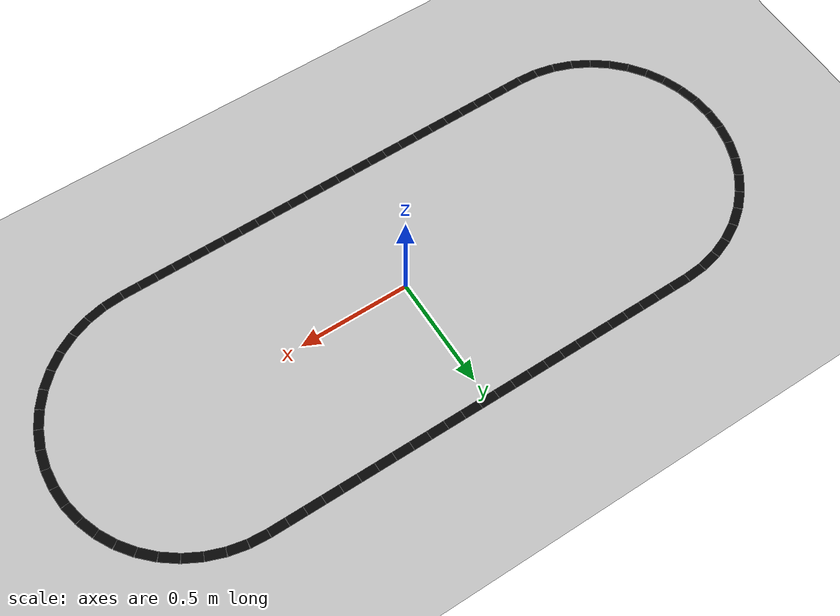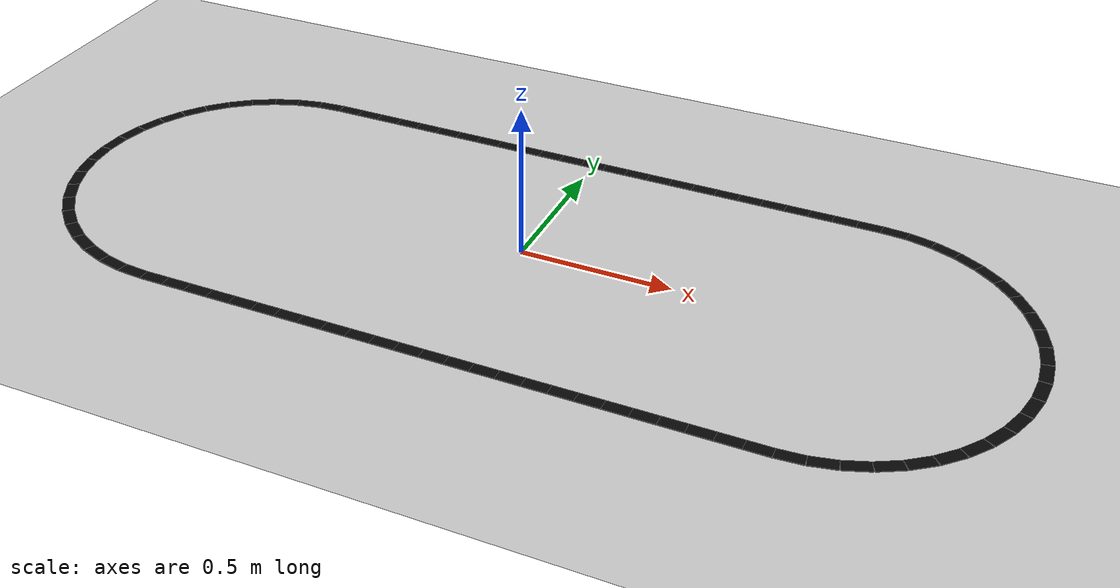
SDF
<sdf version="1.9">
 <world name="line_follower_world">
  <model name="ground_plane">
   <static>true</static>
   <link name="link">
    <collision name="collision">
     <geometry><plane><normal>0 0 1</normal><size>8 6</size></plane></geometry>
    </collision>
    <visual name="visual">
     <geometry><plane><normal>0 0 1</normal><size>8 6</size></plane></geometry>
     <material>
      <ambient>0.75 0.75 0.75 1</ambient>
      <diffuse>0.75 0.75 0.75 1</diffuse>
      <specular>0.1 0.1 0.1 1</specular>
     </material>
    </visual>
   </link>
  </model>
  <model name="line_track">
   <static>true</static>
   <link name="track_link">
    <visual name="line_segment_0">
     <pose>-0.9600 0.6000 0.001 0 0 0.0000</pose>
     <geometry><box><size>0.0800 0.04 0.002</size></box></geometry>
     <material>
      <ambient>0.02 0.02 0.02 1</ambient>
      <diffuse>0.02 0.02 0.02 1</diffuse>
      <specular>0.05 0.05 0.05 1</specular>
     </material>
    </visual>
    <visual name="line_segment_1">
     <pose>-0.8800 0.6000 0.001 0 0 0.0000</pose>
     <geometry><box><size>0.0800 0.04 0.002</size></box></geometry>
     <material>
      <ambient>0.02 0.02 0.02 1</ambient>
      <diffuse>0.02 0.02 0.02 1</diffuse>
      <specular>0.05 0.05 0.05 1</specular>
     </material>
    </visual>
    <visual name="line_segment_2">
     <pose>-0.8000 0.6000 0.001 0 0 0.0000</pose>
     <geometry><box><size>0.0800 0.04 0.002</size></box></geometry>
     <material>
      <ambient>0.02 0.02 0.02 1</ambient>
      <diffuse>0.02 0.02 0.02 1</diffuse>
      <specular>0.05 0.05 0.05 1</specular>
     </material>
    </visual>
    <visual name="line_segment_3">
     <pose>-0.7200 0.6000 0.001 0 0 0.0000</pose>
     <geometry><box><size>0.0800 0.04 0.002</size></box></geometry>
     <material>
      <ambient>0.02 0.02 0.02 1</ambient>
      <diffuse>0.02 0.02 0.02 1</diffuse>
      <specular>0.05 0.05 0.05 1</specular>
     </material>
    </visual>
    <visual name="line_segment_4">
     <pose>-0.6400 0.6000 0.001 0 0 0.0000</pose>
     <geometry><box><size>0.0800 0.04 0.002</size></box></geometry>
     <material>
      <ambient>0.02 0.02 0.02 1</ambient>
      <diffuse>0.02 0.02 0.02 1</diffuse>
      <specular>0.05 0.05 0.05 1</specular>
     </material>
    </visual>
    <visual name="line_segment_5">
     <pose>-0.5600 0.6000 0.001 0 0 0.0000</pose>
     <geometry><box><size>0.0800 0.04 0.002</size></box></geometry>
     <material>
      <ambient>0.02 0.02 0.02 1</ambient>
      <diffuse>0.02 0.02 0.02 1</diffuse>
      <specular>0.05 0.05 0.05 1</specular>
     </material>
    </visual>
    <visual name="line_segment_6">
     <pose>-0.4800 0.6000 0.001 0 0 0.0000</pose>
     <geometry><box><size>0.0800 0.04 0.002</size></box></geometry>
     <material>
      <ambient>0.02 0.02 0.02 1</ambient>
      <diffuse>0.02 0.02 0.02 1</diffuse>
      <specular>0.05 0.05 0.05 1</specular>
     </material>
    </visual>
    <visual name="line_segment_7">
     <pose>-0.4000 0.6000 0.001 0 0 0.0000</pose>
     <geometry><box><size>0.0800 0.04 0.002</size></box></geometry>
     <material>
      <ambient>0.02 0.02 0.02 1</ambient>
      <diffuse>0.02 0.02 0.02 1</diffuse>
      <specular>0.05 0.05 0.05 1</specular>
     </material>
    </visual>
    <visual name="line_segment_8">
     <pose>-0.3200 0.6000 0.001 0 0 0.0000</pose>
     <geometry><box><size>0.0800 0.04 0.002</size></box></geometry>
     <material>
      <ambient>0.02 0.02 0.02 1</ambient>
      <diffuse>0.02 0.02 0.02 1</diffuse>
      <specular>0.05 0.05 0.05 1</specular>
     </material>
    </visual>
    <visual name="line_segment_9">
     <pose>-0.2400 0.6000 0.001 0 0 0.0000</pose>
     <geometry><box><size>0.0800 0.04 0.002</size></box></geometry>
     <material>
      <ambient>0.02 0.02 0.02 1</ambient>
      <diffuse>0.02 0.02 0.02 1</diffuse>
      <specular>0.05 0.05 0.05 1</specular>
     </material>
    </visual>
    <visual name="line_segment_10">
     <pose>-0.1600 0.6000 0.001 0 0 0.0000</pose>
     <geometry><box><size>0.0800 0.04 0.002</size></box></geometry>
     <material>
      <ambient>0.02 0.02 0.02 1</ambient>
      <diffuse>0.02 0.02 0.02 1</diffuse>
      <specular>0.05 0.05 0.05 1</specular>
     </material>
    </visual>
    <visual name="line_segment_11">
     <pose>-0.0800 0.6000 0.001 0 0 0.0000</pose>
     <geometry><box><size>0.0800 0.04 0.002</size></box></geometry>
     <material>
      <ambient>0.02 0.02 0.02 1</ambient>
      <diffuse>0.02 0.02 0.02 1</diffuse>
      <specular>0.05 0.05 0.05 1</specular>
     </material>
    </visual>
    <visual name="line_segment_12">
     <pose>0.0000 0.6000 0.001 0 0 0.0000</pose>
     <geometry><box><size>0.0800 0.04 0.002</size></box></geometry>
     <material>
      <ambient>0.02 0.02 0.02 1</ambient>
      <diffuse>0.02 0.02 0.02 1</diffuse>
      <specular>0.05 0.05 0.05 1</specular>
     </material>
    </visual>
    <visual name="line_segment_13">
     <pose>0.0800 0.6000 0.001 0 0 0.0000</pose>
     <geometry><box><size>0.0800 0.04 0.002</size></box></geometry>
     <material>
      <ambient>0.02 0.02 0.02 1</ambient>
      <diffuse>0.02 0.02 0.02 1</diffuse>
      <specular>0.05 0.05 0.05 1</specular>
     </material>
    </visual>
    <visual name="line_segment_14">
     <pose>0.1600 0.6000 0.001 0 0 0.0000</pose>
     <geometry><box><size>0.0800 0.04 0.002</size></box></geometry>
     <material>
      <ambient>0.02 0.02 0.02 1</ambient>
      <diffuse>0.02 0.02 0.02 1</diffuse>
      <specular>0.05 0.05 0.05 1</specular>
     </material>
    </visual>
    <visual name="line_segment_15">
     <pose>0.2400 0.6000 0.001 0 0 0.0000</pose>
     <geometry><box><size>0.0800 0.04 0.002</size></box></geometry>
     <material>
      <ambient>0.02 0.02 0.02 1</ambient>
      <diffuse>0.02 0.02 0.02 1</diffuse>
      <specular>0.05 0.05 0.05 1</specular>
     </material>
    </visual>
    <visual name="line_segment_16">
     <pose>0.3200 0.6000 0.001 0 0 0.0000</pose>
     <geometry><box><size>0.0800 0.04 0.002</size></box></geometry>
     <material>
      <ambient>0.02 0.02 0.02 1</ambient>
      <diffuse>0.02 0.02 0.02 1</diffuse>
      <specular>0.05 0.05 0.05 1</specular>
     </material>
    </visual>
    <visual name="line_segment_17">
     <pose>0.4000 0.6000 0.001 0 0 0.0000</pose>
     <geometry><box><size>0.0800 0.04 0.002</size></box></geometry>
     <material>
      <ambient>0.02 0.02 0.02 1</ambient>
      <diffuse>0.02 0.02 0.02 1</diffuse>
      <specular>0.05 0.05 0.05 1</specular>
     </material>
    </visual>
    <visual name="line_segment_18">
     <pose>0.4800 0.6000 0.001 0 0 0.0000</pose>
     <geometry><box><size>0.0800 0.04 0.002</size></box></geometry>
     <material>
      <ambient>0.02 0.02 0.02 1</ambient>
      <diffuse>0.02 0.02 0.02 1</diffuse>
      <specular>0.05 0.05 0.05 1</specular>
     </material>
    </visual>
    <visual name="line_segment_19">
     <pose>0.5600 0.6000 0.001 0 0 0.0000</pose>
     <geometry><box><size>0.0800 0.04 0.002</size></box></geometry>
     <material>
      <ambient>0.02 0.02 0.02 1</ambient>
      <diffuse>0.02 0.02 0.02 1</diffuse>
      <specular>0.05 0.05 0.05 1</specular>
     </material>
    </visual>
    <visual name="line_segment_20">
     <pose>0.6400 0.6000 0.001 0 0 0.0000</pose>
     <geometry><box><size>0.0800 0.04 0.002</size></box></geometry>
     <material>
      <ambient>0.02 0.02 0.02 1</ambient>
      <diffuse>0.02 0.02 0.02 1</diffuse>
      <specular>0.05 0.05 0.05 1</specular>
     </material>
    </visual>
    <visual name="line_segment_21">
     <pose>0.7200 0.6000 0.001 0 0 0.0000</pose>
     <geometry><box><size>0.0800 0.04 0.002</size></box></geometry>
     <material>
      <ambient>0.02 0.02 0.02 1</ambient>
      <diffuse>0.02 0.02 0.02 1</diffuse>
      <specular>0.05 0.05 0.05 1</specular>
     </material>
    </visual>
    <visual name="line_segment_22">
     <pose>0.8000 0.6000 0.001 0 0 0.0000</pose>
     <geometry><box><size>0.0800 0.04 0.002</size></box></geometry>
     <material>
      <ambient>0.02 0.02 0.02 1</ambient>
      <diffuse>0.02 0.02 0.02 1</diffuse>
      <specular>0.05 0.05 0.05 1</specular>
     </material>
    </visual>
    <visual name="line_segment_23">
     <pose>0.8800 0.6000 0.001 0 0 0.0000</pose>
     <geometry><box><size>0.0800 0.04 0.002</size></box></geometry>
     <material>
      <ambient>0.02 0.02 0.02 1</ambient>
      <diffuse>0.02 0.02 0.02 1</diffuse>
      <specular>0.05 0.05 0.05 1</specular>
     </material>
    </visual>
    <visual name="line_segment_24">
     <pose>0.9600 0.6000 0.001 0 0 0.0000</pose>
     <geometry><box><size>0.0800 0.04 0.002</size></box></geometry>
     <material>
      <ambient>0.02 0.02 0.02 1</ambient>
      <diffuse>0.02 0.02 0.02 1</diffuse>
      <specular>0.05 0.05 0.05 1</specular>
     </material>
    </visual>
    <visual name="line_segment_25">
     <pose>1.0427 0.5969 0.001 0 0 -0.0714</pose>
     <geometry><box><size>0.0856 0.04 0.002</size></box></geometry>
     <material>
      <ambient>0.02 0.02 0.02 1</ambient>
      <diffuse>0.02 0.02 0.02 1</diffuse>
      <specular>0.05 0.05 0.05 1</specular>
     </material>
    </visual>
    <visual name="line_segment_26">
     <pose>1.1272 0.5848 0.001 0 0 -0.2142</pose>
     <geometry><box><size>0.0856 0.04 0.002</size></box></geometry>
     <material>
      <ambient>0.02 0.02 0.02 1</ambient>
      <diffuse>0.02 0.02 0.02 1</diffuse>
      <specular>0.05 0.05 0.05 1</specular>
     </material>
    </visual>
    <visual name="line_segment_27">
     <pose>1.2091 0.5607 0.001 0 0 -0.3570</pose>
     <geometry><box><size>0.0856 0.04 0.002</size></box></geometry>
     <material>
      <ambient>0.02 0.02 0.02 1</ambient>
      <diffuse>0.02 0.02 0.02 1</diffuse>
      <specular>0.05 0.05 0.05 1</specular>
     </material>
    </visual>
    <visual name="line_segment_28">
     <pose>1.2868 0.5253 0.001 0 0 -0.4998</pose>
     <geometry><box><size>0.0856 0.04 0.002</size></box></geometry>
     <material>
      <ambient>0.02 0.02 0.02 1</ambient>
      <diffuse>0.02 0.02 0.02 1</diffuse>
      <specular>0.05 0.05 0.05 1</specular>
     </material>
    </visual>
    <visual name="line_segment_29">
     <pose>1.3587 0.4791 0.001 0 0 -0.6426</pose>
     <geometry><box><size>0.0856 0.04 0.002</size></box></geometry>
     <material>
      <ambient>0.02 0.02 0.02 1</ambient>
      <diffuse>0.02 0.02 0.02 1</diffuse>
      <specular>0.05 0.05 0.05 1</specular>
     </material>
    </visual>
    <visual name="line_segment_30">
     <pose>1.4232 0.4232 0.001 0 0 -0.7854</pose>
     <geometry><box><size>0.0856 0.04 0.002</size></box></geometry>
     <material>
      <ambient>0.02 0.02 0.02 1</ambient>
      <diffuse>0.02 0.02 0.02 1</diffuse>
      <specular>0.05 0.05 0.05 1</specular>
     </material>
    </visual>
    <visual name="line_segment_31">
     <pose>1.4791 0.3587 0.001 0 0 -0.9282</pose>
     <geometry><box><size>0.0856 0.04 0.002</size></box></geometry>
     <material>
      <ambient>0.02 0.02 0.02 1</ambient>
      <diffuse>0.02 0.02 0.02 1</diffuse>
      <specular>0.05 0.05 0.05 1</specular>
     </material>
    </visual>
    <visual name="line_segment_32">
     <pose>1.5253 0.2868 0.001 0 0 -1.0710</pose>
     <geometry><box><size>0.0856 0.04 0.002</size></box></geometry>
     <material>
      <ambient>0.02 0.02 0.02 1</ambient>
      <diffuse>0.02 0.02 0.02 1</diffuse>
      <specular>0.05 0.05 0.05 1</specular>
     </material>
    </visual>
    <visual name="line_segment_33">
     <pose>1.5607 0.2091 0.001 0 0 -1.2138</pose>
     <geometry><box><size>0.0856 0.04 0.002</size></box></geometry>
     <material>
      <ambient>0.02 0.02 0.02 1</ambient>
      <diffuse>0.02 0.02 0.02 1</diffuse>
      <specular>0.05 0.05 0.05 1</specular>
     </material>
    </visual>
    <visual name="line_segment_34">
     <pose>1.5848 0.1272 0.001 0 0 -1.3566</pose>
     <geometry><box><size>0.0856 0.04 0.002</size></box></geometry>
     <material>
      <ambient>0.02 0.02 0.02 1</ambient>
      <diffuse>0.02 0.02 0.02 1</diffuse>
      <specular>0.05 0.05 0.05 1</specular>
     </material>
    </visual>
    <visual name="line_segment_35">
     <pose>1.5969 0.0427 0.001 0 0 -1.4994</pose>
     <geometry><box><size>0.0856 0.04 0.002</size></box></geometry>
     <material>
      <ambient>0.02 0.02 0.02 1</ambient>
      <diffuse>0.02 0.02 0.02 1</diffuse>
      <specular>0.05 0.05 0.05 1</specular>
     </material>
    </visual>
    <visual name="line_segment_36">
     <pose>1.5969 -0.0427 0.001 0 0 -1.6422</pose>
     <geometry><box><size>0.0856 0.04 0.002</size></box></geometry>
     <material>
      <ambient>0.02 0.02 0.02 1</ambient>
      <diffuse>0.02 0.02 0.02 1</diffuse>
      <specular>0.05 0.05 0.05 1</specular>
     </material>
    </visual>
    <visual name="line_segment_37">
     <pose>1.5848 -0.1272 0.001 0 0 -1.7850</pose>
     <geometry><box><size>0.0856 0.04 0.002</size></box></geometry>
     <material>
      <ambient>0.02 0.02 0.02 1</ambient>
      <diffuse>0.02 0.02 0.02 1</diffuse>
      <specular>0.05 0.05 0.05 1</specular>
     </material>
    </visual>
    <visual name="line_segment_38">
     <pose>1.5607 -0.2091 0.001 0 0 -1.9278</pose>
     <geometry><box><size>0.0856 0.04 0.002</size></box></geometry>
     <material>
      <ambient>0.02 0.02 0.02 1</ambient>
      <diffuse>0.02 0.02 0.02 1</diffuse>
      <specular>0.05 0.05 0.05 1</specular>
     </material>
    </visual>
    <visual name="line_segment_39">
     <pose>1.5253 -0.2868 0.001 0 0 -2.0706</pose>
     <geometry><box><size>0.0856 0.04 0.002</size></box></geometry>
     <material>
      <ambient>0.02 0.02 0.02 1</ambient>
      <diffuse>0.02 0.02 0.02 1</diffuse>
      <specular>0.05 0.05 0.05 1</specular>
     </material>
    </visual>
    <visual name="line_segment_40">
     <pose>1.4791 -0.3587 0.001 0 0 -2.2134</pose>
     <geometry><box><size>0.0856 0.04 0.002</size></box></geometry>
     <material>
      <ambient>0.02 0.02 0.02 1</ambient>
      <diffuse>0.02 0.02 0.02 1</diffuse>
      <specular>0.05 0.05 0.05 1</specular>
     </material>
    </visual>
    <visual name="line_segment_41">
     <pose>1.4232 -0.4232 0.001 0 0 -2.3562</pose>
     <geometry><box><size>0.0856 0.04 0.002</size></box></geometry>
     <material>
      <ambient>0.02 0.02 0.02 1</ambient>
      <diffuse>0.02 0.02 0.02 1</diffuse>
      <specular>0.05 0.05 0.05 1</specular>
     </material>
    </visual>
    <visual name="line_segment_42">
     <pose>1.3587 -0.4791 0.001 0 0 -2.4990</pose>
     <geometry><box><size>0.0856 0.04 0.002</size></box></geometry>
     <material>
      <ambient>0.02 0.02 0.02 1</ambient>
      <diffuse>0.02 0.02 0.02 1</diffuse>
      <specular>0.05 0.05 0.05 1</specular>
     </material>
    </visual>
    <visual name="line_segment_43">
     <pose>1.2868 -0.5253 0.001 0 0 -2.6418</pose>
     <geometry><box><size>0.0856 0.04 0.002</size></box></geometry>
     <material>
      <ambient>0.02 0.02 0.02 1</ambient>
      <diffuse>0.02 0.02 0.02 1</diffuse>
      <specular>0.05 0.05 0.05 1</specular>
     </material>
    </visual>
    <visual name="line_segment_44">
     <pose>1.2091 -0.5607 0.001 0 0 -2.7846</pose>
     <geometry><box><size>0.0856 0.04 0.002</size></box></geometry>
     <material>
      <ambient>0.02 0.02 0.02 1</ambient>
      <diffuse>0.02 0.02 0.02 1</diffuse>
      <specular>0.05 0.05 0.05 1</specular>
     </material>
    </visual>
    <visual name="line_segment_45">
     <pose>1.1272 -0.5848 0.001 0 0 -2.9274</pose>
     <geometry><box><size>0.0856 0.04 0.002</size></box></geometry>
     <material>
      <ambient>0.02 0.02 0.02 1</ambient>
      <diffuse>0.02 0.02 0.02 1</diffuse>
      <specular>0.05 0.05 0.05 1</specular>
     </material>
    </visual>
    <visual name="line_segment_46">
     <pose>1.0427 -0.5969 0.001 0 0 -3.0702</pose>
     <geometry><box><size>0.0856 0.04 0.002</size></box></geometry>
     <material>
      <ambient>0.02 0.02 0.02 1</ambient>
      <diffuse>0.02 0.02 0.02 1</diffuse>
      <specular>0.05 0.05 0.05 1</specular>
     </material>
    </visual>
    <visual name="line_segment_47">
     <pose>0.9600 -0.6000 0.001 0 0 3.1416</pose>
     <geometry><box><size>0.0800 0.04 0.002</size></box></geometry>
     <material>
      <ambient>0.02 0.02 0.02 1</ambient>
      <diffuse>0.02 0.02 0.02 1</diffuse>
      <specular>0.05 0.05 0.05 1</specular>
     </material>
    </visual>
    <visual name="line_segment_48">
     <pose>0.8800 -0.6000 0.001 0 0 3.1416</pose>
     <geometry><box><size>0.0800 0.04 0.002</size></box></geometry>
     <material>
      <ambient>0.02 0.02 0.02 1</ambient>
      <diffuse>0.02 0.02 0.02 1</diffuse>
      <specular>0.05 0.05 0.05 1</specular>
     </material>
    </visual>
    <visual name="line_segment_49">
     <pose>0.8000 -0.6000 0.001 0 0 3.1416</pose>
     <geometry><box><size>0.0800 0.04 0.002</size></box></geometry>
     <material>
      <ambient>0.02 0.02 0.02 1</ambient>
      <diffuse>0.02 0.02 0.02 1</diffuse>
      <specular>0.05 0.05 0.05 1</specular>
     </material>
    </visual>
    <visual name="line_segment_50">
     <pose>0.7200 -0.6000 0.001 0 0 3.1416</pose>
     <geometry><box><size>0.0800 0.04 0.002</size></box></geometry>
     <material>
      <ambient>0.02 0.02 0.02 1</ambient>
      <diffuse>0.02 0.02 0.02 1</diffuse>
      <specular>0.05 0.05 0.05 1</specular>
     </material>
    </visual>
    <visual name="line_segment_51">
     <pose>0.6400 -0.6000 0.001 0 0 3.1416</pose>
     <geometry><box><size>0.0800 0.04 0.002</size></box></geometry>
     <material>
      <ambient>0.02 0.02 0.02 1</ambient>
      <diffuse>0.02 0.02 0.02 1</diffuse>
      <specular>0.05 0.05 0.05 1</specular>
     </material>
    </visual>
    <visual name="line_segment_52">
     <pose>0.5600 -0.6000 0.001 0 0 3.1416</pose>
     <geometry><box><size>0.0800 0.04 0.002</size></box></geometry>
     <material>
      <ambient>0.02 0.02 0.02 1</ambient>
      <diffuse>0.02 0.02 0.02 1</diffuse>
      <specular>0.05 0.05 0.05 1</specular>
     </material>
    </visual>
    <visual name="line_segment_53">
     <pose>0.4800 -0.6000 0.001 0 0 3.1416</pose>
     <geometry><box><size>0.0800 0.04 0.002</size></box></geometry>
     <material>
      <ambient>0.02 0.02 0.02 1</ambient>
      <diffuse>0.02 0.02 0.02 1</diffuse>
      <specular>0.05 0.05 0.05 1</specular>
     </material>
    </visual>
    <visual name="line_segment_54">
     <pose>0.4000 -0.6000 0.001 0 0 3.1416</pose>
     <geometry><box><size>0.0800 0.04 0.002</size></box></geometry>
     <material>
      <ambient>0.02 0.02 0.02 1</ambient>
      <diffuse>0.02 0.02 0.02 1</diffuse>
      <specular>0.05 0.05 0.05 1</specular>
     </material>
    </visual>
    <visual name="line_segment_55">
     <pose>0.3200 -0.6000 0.001 0 0 3.1416</pose>
     <geometry><box><size>0.0800 0.04 0.002</size></box></geometry>
     <material>
      <ambient>0.02 0.02 0.02 1</ambient>
      <diffuse>0.02 0.02 0.02 1</diffuse>
      <specular>0.05 0.05 0.05 1</specular>
     </material>
    </visual>
    <visual name="line_segment_56">
     <pose>0.2400 -0.6000 0.001 0 0 3.1416</pose>
     <geometry><box><size>0.0800 0.04 0.002</size></box></geometry>
     <material>
      <ambient>0.02 0.02 0.02 1</ambient>
      <diffuse>0.02 0.02 0.02 1</diffuse>
      <specular>0.05 0.05 0.05 1</specular>
     </material>
    </visual>
    <visual name="line_segment_57">
     <pose>0.1600 -0.6000 0.001 0 0 3.1416</pose>
     <geometry><box><size>0.0800 0.04 0.002</size></box></geometry>
     <material>
      <ambient>0.02 0.02 0.02 1</ambient>
      <diffuse>0.02 0.02 0.02 1</diffuse>
      <specular>0.05 0.05 0.05 1</specular>
     </material>
    </visual>
    <visual name="line_segment_58">
     <pose>0.0800 -0.6000 0.001 0 0 3.1416</pose>
     <geometry><box><size>0.0800 0.04 0.002</size></box></geometry>
     <material>
      <ambient>0.02 0.02 0.02 1</ambient>
      <diffuse>0.02 0.02 0.02 1</diffuse>
      <specular>0.05 0.05 0.05 1</specular>
     </material>
    </visual>
    <visual name="line_segment_59">
     <pose>0.0000 -0.6000 0.001 0 0 3.1416</pose>
     <geometry><box><size>0.0800 0.04 0.002</size></box></geometry>
     <material>
      <ambient>0.02 0.02 0.02 1</ambient>
      <diffuse>0.02 0.02 0.02 1</diffuse>
      <specular>0.05 0.05 0.05 1</specular>
     </material>
    </visual>
    <visual name="line_segment_60">
     <pose>-0.0800 -0.6000 0.001 0 0 3.1416</pose>
     <geometry><box><size>0.0800 0.04 0.002</size></box></geometry>
     <material>
      <ambient>0.02 0.02 0.02 1</ambient>
      <diffuse>0.02 0.02 0.02 1</diffuse>
      <specular>0.05 0.05 0.05 1</specular>
     </material>
    </visual>
    <visual name="line_segment_61">
     <pose>-0.1600 -0.6000 0.001 0 0 3.1416</pose>
     <geometry><box><size>0.0800 0.04 0.002</size></box></geometry>
     <material>
      <ambient>0.02 0.02 0.02 1</ambient>
      <diffuse>0.02 0.02 0.02 1</diffuse>
      <specular>0.05 0.05 0.05 1</specular>
     </material>
    </visual>
    <visual name="line_segment_62">
     <pose>-0.2400 -0.6000 0.001 0 0 3.1416</pose>
     <geometry><box><size>0.0800 0.04 0.002</size></box></geometry>
     <material>
      <ambient>0.02 0.02 0.02 1</ambient>
      <diffuse>0.02 0.02 0.02 1</diffuse>
      <specular>0.05 0.05 0.05 1</specular>
     </material>
    </visual>
    <visual name="line_segment_63">
     <pose>-0.3200 -0.6000 0.001 0 0 3.1416</pose>
     <geometry><box><size>0.0800 0.04 0.002</size></box></geometry>
     <material>
      <ambient>0.02 0.02 0.02 1</ambient>
      <diffuse>0.02 0.02 0.02 1</diffuse>
      <specular>0.05 0.05 0.05 1</specular>
     </material>
    </visual>
    <visual name="line_segment_64">
     <pose>-0.4000 -0.6000 0.001 0 0 3.1416</pose>
     <geometry><box><size>0.0800 0.04 0.002</size></box></geometry>
     <material>
      <ambient>0.02 0.02 0.02 1</ambient>
      <diffuse>0.02 0.02 0.02 1</diffuse>
      <specular>0.05 0.05 0.05 1</specular>
     </material>
    </visual>
    <visual name="line_segment_65">
     <pose>-0.4800 -0.6000 0.001 0 0 3.1416</pose>
     <geometry><box><size>0.0800 0.04 0.002</size></box></geometry>
     <material>
      <ambient>0.02 0.02 0.02 1</ambient>
      <diffuse>0.02 0.02 0.02 1</diffuse>
      <specular>0.05 0.05 0.05 1</specular>
     </material>
    </visual>
    <visual name="line_segment_66">
     <pose>-0.5600 -0.6000 0.001 0 0 3.1416</pose>
     <geometry><box><size>0.0800 0.04 0.002</size></box></geometry>
     <material>
      <ambient>0.02 0.02 0.02 1</ambient>
      <diffuse>0.02 0.02 0.02 1</diffuse>
      <specular>0.05 0.05 0.05 1</specular>
     </material>
    </visual>
    <visual name="line_segment_67">
     <pose>-0.6400 -0.6000 0.001 0 0 3.1416</pose>
     <geometry><box><size>0.0800 0.04 0.002</size></box></geometry>
     <material>
      <ambient>0.02 0.02 0.02 1</ambient>
      <diffuse>0.02 0.02 0.02 1</diffuse>
      <specular>0.05 0.05 0.05 1</specular>
     </material>
    </visual>
    <visual name="line_segment_68">
     <pose>-0.7200 -0.6000 0.001 0 0 3.1416</pose>
     <geometry><box><size>0.0800 0.04 0.002</size></box></geometry>
     <material>
      <ambient>0.02 0.02 0.02 1</ambient>
      <diffuse>0.02 0.02 0.02 1</diffuse>
      <specular>0.05 0.05 0.05 1</specular>
     </material>
    </visual>
    <visual name="line_segment_69">
     <pose>-0.8000 -0.6000 0.001 0 0 3.1416</pose>
     <geometry><box><size>0.0800 0.04 0.002</size></box></geometry>
     <material>
      <ambient>0.02 0.02 0.02 1</ambient>
      <diffuse>0.02 0.02 0.02 1</diffuse>
      <specular>0.05 0.05 0.05 1</specular>
     </material>
    </visual>
    <visual name="line_segment_70">
     <pose>-0.8800 -0.6000 0.001 0 0 3.1416</pose>
     <geometry><box><size>0.0800 0.04 0.002</size></box></geometry>
     <material>
      <ambient>0.02 0.02 0.02 1</ambient>
      <diffuse>0.02 0.02 0.02 1</diffuse>
      <specular>0.05 0.05 0.05 1</specular>
     </material>
    </visual>
    <visual name="line_segment_71">
     <pose>-0.9600 -0.6000 0.001 0 0 3.1416</pose>
     <geometry><box><size>0.0800 0.04 0.002</size></box></geometry>
     <material>
      <ambient>0.02 0.02 0.02 1</ambient>
      <diffuse>0.02 0.02 0.02 1</diffuse>
      <specular>0.05 0.05 0.05 1</specular>
     </material>
    </visual>
    <visual name="line_segment_72">
     <pose>-1.0427 0.5969 0.001 0 0 -3.0702</pose>
     <geometry><box><size>0.0856 0.04 0.002</size></box></geometry>
     <material>
      <ambient>0.02 0.02 0.02 1</ambient>
      <diffuse>0.02 0.02 0.02 1</diffuse>
      <specular>0.05 0.05 0.05 1</specular>
     </material>
    </visual>
    <visual name="line_segment_73">
     <pose>-1.1272 0.5848 0.001 0 0 -2.9274</pose>
     <geometry><box><size>0.0856 0.04 0.002</size></box></geometry>
     <material>
      <ambient>0.02 0.02 0.02 1</ambient>
      <diffuse>0.02 0.02 0.02 1</diffuse>
      <specular>0.05 0.05 0.05 1</specular>
     </material>
    </visual>
    <visual name="line_segment_74">
     <pose>-1.2091 0.5607 0.001 0 0 -2.7846</pose>
     <geometry><box><size>0.0856 0.04 0.002</size></box></geometry>
     <material>
      <ambient>0.02 0.02 0.02 1</ambient>
      <diffuse>0.02 0.02 0.02 1</diffuse>
      <specular>0.05 0.05 0.05 1</specular>
     </material>
    </visual>
    <visual name="line_segment_75">
     <pose>-1.2868 0.5253 0.001 0 0 -2.6418</pose>
     <geometry><box><size>0.0856 0.04 0.002</size></box></geometry>
     <material>
      <ambient>0.02 0.02 0.02 1</ambient>
      <diffuse>0.02 0.02 0.02 1</diffuse>
      <specular>0.05 0.05 0.05 1</specular>
     </material>
    </visual>
    <visual name="line_segment_76">
     <pose>-1.3587 0.4791 0.001 0 0 -2.4990</pose>
     <geometry><box><size>0.0856 0.04 0.002</size></box></geometry>
     <material>
      <ambient>0.02 0.02 0.02 1</ambient>
      <diffuse>0.02 0.02 0.02 1</diffuse>
      <specular>0.05 0.05 0.05 1</specular>
     </material>
    </visual>
    <visual name="line_segment_77">
     <pose>-1.4232 0.4232 0.001 0 0 -2.3562</pose>
     <geometry><box><size>0.0856 0.04 0.002</size></box></geometry>
     <material>
      <ambient>0.02 0.02 0.02 1</ambient>
      <diffuse>0.02 0.02 0.02 1</diffuse>
      <specular>0.05 0.05 0.05 1</specular>
     </material>
    </visual>
    <visual name="line_segment_78">
     <pose>-1.4791 0.3587 0.001 0 0 -2.2134</pose>
     <geometry><box><size>0.0856 0.04 0.002</size></box></geometry>
     <material>
      <ambient>0.02 0.02 0.02 1</ambient>
      <diffuse>0.02 0.02 0.02 1</diffuse>
      <specular>0.05 0.05 0.05 1</specular>
     </material>
    </visual>
    <visual name="line_segment_79">
     <pose>-1.5253 0.2868 0.001 0 0 -2.0706</pose>
     <geometry><box><size>0.0856 0.04 0.002</size></box></geometry>
     <material>
      <ambient>0.02 0.02 0.02 1</ambient>
      <diffuse>0.02 0.02 0.02 1</diffuse>
      <specular>0.05 0.05 0.05 1</specular>
     </material>
    </visual>
    <visual name="line_segment_80">
     <pose>-1.5607 0.2091 0.001 0 0 -1.9278</pose>
     <geometry><box><size>0.0856 0.04 0.002</size></box></geometry>
     <material>
      <ambient>0.02 0.02 0.02 1</ambient>
      <diffuse>0.02 0.02 0.02 1</diffuse>
      <specular>0.05 0.05 0.05 1</specular>
     </material>
    </visual>
    <visual name="line_segment_81">
     <pose>-1.5848 0.1272 0.001 0 0 -1.7850</pose>
     <geometry><box><size>0.0856 0.04 0.002</size></box></geometry>
     <material>
      <ambient>0.02 0.02 0.02 1</ambient>
      <diffuse>0.02 0.02 0.02 1</diffuse>
      <specular>0.05 0.05 0.05 1</specular>
     </material>
    </visual>
    <visual name="line_segment_82">
     <pose>-1.5969 0.0427 0.001 0 0 -1.6422</pose>
     <geometry><box><size>0.0856 0.04 0.002</size></box></geometry>
     <material>
      <ambient>0.02 0.02 0.02 1</ambient>
      <diffuse>0.02 0.02 0.02 1</diffuse>
      <specular>0.05 0.05 0.05 1</specular>
     </material>
    </visual>
    <visual name="line_segment_83">
     <pose>-1.5969 -0.0427 0.001 0 0 -1.4994</pose>
     <geometry><box><size>0.0856 0.04 0.002</size></box></geometry>
     <material>
      <ambient>0.02 0.02 0.02 1</ambient>
      <diffuse>0.02 0.02 0.02 1</diffuse>
      <specular>0.05 0.05 0.05 1</specular>
     </material>
    </visual>
    <visual name="line_segment_84">
     <pose>-1.5848 -0.1272 0.001 0 0 -1.3566</pose>
     <geometry><box><size>0.0856 0.04 0.002</size></box></geometry>
     <material>
      <ambient>0.02 0.02 0.02 1</ambient>
      <diffuse>0.02 0.02 0.02 1</diffuse>
      <specular>0.05 0.05 0.05 1</specular>
     </material>
    </visual>
    <visual name="line_segment_85">
     <pose>-1.5607 -0.2091 0.001 0 0 -1.2138</pose>
     <geometry><box><size>0.0856 0.04 0.002</size></box></geometry>
     <material>
      <ambient>0.02 0.02 0.02 1</ambient>
      <diffuse>0.02 0.02 0.02 1</diffuse>
      <specular>0.05 0.05 0.05 1</specular>
     </material>
    </visual>
    <visual name="line_segment_86">
     <pose>-1.5253 -0.2868 0.001 0 0 -1.0710</pose>
     <geometry><box><size>0.0856 0.04 0.002</size></box></geometry>
     <material>
      <ambient>0.02 0.02 0.02 1</ambient>
      <diffuse>0.02 0.02 0.02 1</diffuse>
      <specular>0.05 0.05 0.05 1</specular>
     </material>
    </visual>
    <visual name="line_segment_87">
     <pose>-1.4791 -0.3587 0.001 0 0 -0.9282</pose>
     <geometry><box><size>0.0856 0.04 0.002</size></box></geometry>
     <material>
      <ambient>0.02 0.02 0.02 1</ambient>
      <diffuse>0.02 0.02 0.02 1</diffuse>
      <specular>0.05 0.05 0.05 1</specular>
     </material>
    </visual>
    <visual name="line_segment_88">
     <pose>-1.4232 -0.4232 0.001 0 0 -0.7854</pose>
     <geometry><box><size>0.0856 0.04 0.002</size></box></geometry>
     <material>
      <ambient>0.02 0.02 0.02 1</ambient>
      <diffuse>0.02 0.02 0.02 1</diffuse>
      <specular>0.05 0.05 0.05 1</specular>
     </material>
    </visual>
    <visual name="line_segment_89">
     <pose>-1.3587 -0.4791 0.001 0 0 -0.6426</pose>
     <geometry><box><size>0.0856 0.04 0.002</size></box></geometry>
     <material>
      <ambient>0.02 0.02 0.02 1</ambient>
      <diffuse>0.02 0.02 0.02 1</diffuse>
      <specular>0.05 0.05 0.05 1</specular>
     </material>
    </visual>
    <visual name="line_segment_90">
     <pose>-1.2868 -0.5253 0.001 0 0 -0.4998</pose>
     <geometry><box><size>0.0856 0.04 0.002</size></box></geometry>
     <material>
      <ambient>0.02 0.02 0.02 1</ambient>
      <diffuse>0.02 0.02 0.02 1</diffuse>
      <specular>0.05 0.05 0.05 1</specular>
     </material>
    </visual>
    <visual name="line_segment_91">
     <pose>-1.2091 -0.5607 0.001 0 0 -0.3570</pose>
     <geometry><box><size>0.0856 0.04 0.002</size></box></geometry>
     <material>
      <ambient>0.02 0.02 0.02 1</ambient>
      <diffuse>0.02 0.02 0.02 1</diffuse>
      <specular>0.05 0.05 0.05 1</specular>
     </material>
    </visual>
    <visual name="line_segment_92">
     <pose>-1.1272 -0.5848 0.001 0 0 -0.2142</pose>
     <geometry><box><size>0.0856 0.04 0.002</size></box></geometry>
     <material>
      <ambient>0.02 0.02 0.02 1</ambient>
      <diffuse>0.02 0.02 0.02 1</diffuse>
      <specular>0.05 0.05 0.05 1</specular>
     </material>
    </visual>
    <visual name="line_segment_93">
     <pose>-1.0427 -0.5969 0.001 0 0 -0.0714</pose>
     <geometry><box><size>0.0856 0.04 0.002</size></box></geometry>
     <material>
      <ambient>0.02 0.02 0.02 1</ambient>
      <diffuse>0.02 0.02 0.02 1</diffuse>
      <specular>0.05 0.05 0.05 1</specular>
     </material>
    </visual>
   </link>
  </model>
 </world>
</sdf>
